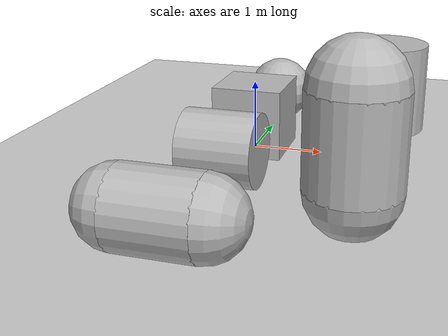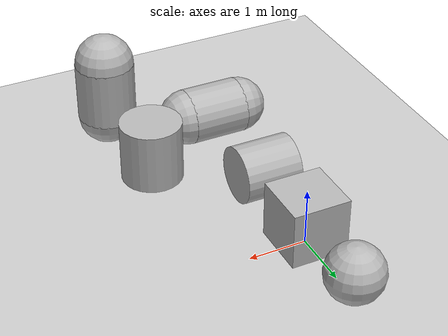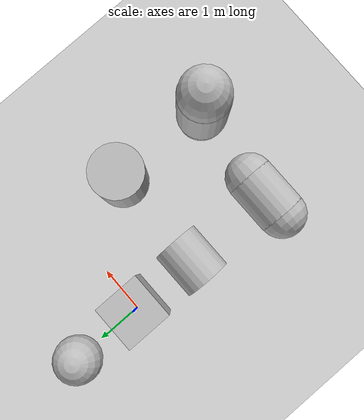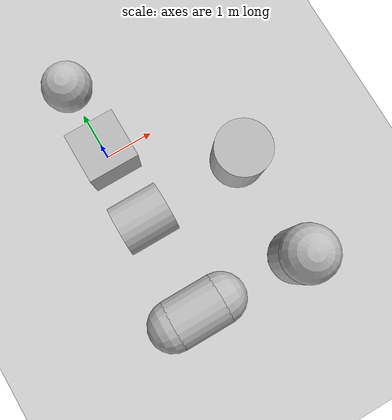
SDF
<?xml version="1.0" ?>
<sdf version="1.5">
  <world name="default">
    <include>
      <uri>model://ground_plane</uri>
    </include>
    <include>
      <uri>model://sun</uri>
    </include>

    <gravity>1 0 -9.81</gravity>

    <model name="box">
      <pose>0 0 0.5 0 0 0</pose>
      <link name="link">
        <collision name="collision">
          <geometry>
            <box>
              <size>1 1 1</size>
            </box>
          </geometry>
        </collision>
        <visual name="visual">
          <geometry>
            <box>
              <size>1 1 1</size>
            </box>
          </geometry>
          <material>
            <script>Gazebo/WoodPallet</script>
          </material>
        </visual>
      </link>
    </model>
    <model name="sphere">
      <pose>0 1.5 0.5 0 0 0</pose>
      <link name="link">
        <collision name="collision">
          <geometry>
            <sphere>
              <radius>0.5</radius>
            </sphere>
          </geometry>
        </collision>
        <visual name="visual">
          <geometry>
            <sphere>
              <radius>0.5</radius>
            </sphere>
          </geometry>
          <material>
            <script>Gazebo/WoodPallet</script>
          </material>
        </visual>
      </link>
    </model>
    <model name="cylinder">
      <pose>0 -1.5 0.5 0 1.5707 0</pose>
      <link name="link">
        <collision name="collision">
          <geometry>
            <cylinder>
              <radius>0.5</radius>
              <length>1.0</length>
            </cylinder>
          </geometry>
        </collision>
        <visual name="visual">
          <geometry>
            <cylinder>
              <radius>0.5</radius>
              <length>1.0</length>
            </cylinder>
          </geometry>
          <material>
            <script>Gazebo/WoodPallet</script>
          </material>
        </visual>
      </link>
    </model>
    <model name="capsule">
      <pose>0 -3.5 0.5 0 1.5707 0</pose>
      <link name="link">
        <collision name="collision">
          <geometry>
            <cylinder>
              <radius>-0.5</radius>
              <length>1.0</length>
            </cylinder>
          </geometry>
        </collision>
        <visual name="sphere_visual_1">
          <pose>0 0 0.5 0 0 0</pose>
          <geometry>
            <sphere>
              <radius>0.5</radius>
            </sphere>
          </geometry>
          <material>
            <script>Gazebo/WoodPallet</script>
          </material>
        </visual>
        <visual name="cylinder_visual">
          <geometry>
            <cylinder>
              <radius>0.5</radius>
              <length>1.0</length>
            </cylinder>
          </geometry>
          <material>
            <script>Gazebo/WoodPallet</script>
          </material>
        </visual>
        <visual name="sphere_visual_2">
          <pose>0 0 -0.5 0 0 0</pose>
          <geometry>
            <sphere>
              <radius>0.5</radius>
            </sphere>
          </geometry>
          <material>
            <script>Gazebo/WoodPallet</script>
          </material>
        </visual>
      </link>
    </model>
    <model name="cylinderZ">
      <pose>2 -1.5 1.5 0 0 0</pose>
      <link name="link">
        <collision name="collision">
          <geometry>
            <cylinder>
              <radius>0.5</radius>
              <length>1.0</length>
            </cylinder>
          </geometry>
        </collision>
        <visual name="visual">
          <geometry>
            <cylinder>
              <radius>0.5</radius>
              <length>1.0</length>
            </cylinder>
          </geometry>
          <material>
            <script>Gazebo/WoodPallet</script>
          </material>
        </visual>
      </link>
    </model>
    <model name="capsuleZ">
      <pose>2 -3.5 1.5 0 0 0</pose>
      <link name="link">
        <collision name="collision">
          <geometry>
            <cylinder>
              <radius>-0.5</radius>
              <length>1.0</length>
            </cylinder>
          </geometry>
        </collision>
        <visual name="sphere_visual_1">
          <pose>0 0 0.5 0 0 0</pose>
          <geometry>
            <sphere>
              <radius>0.5</radius>
            </sphere>
          </geometry>
          <material>
            <script>Gazebo/WoodPallet</script>
          </material>
        </visual>
        <visual name="cylinder_visual">
          <geometry>
            <cylinder>
              <radius>0.5</radius>
              <length>1.0</length>
            </cylinder>
          </geometry>
          <material>
            <script>Gazebo/WoodPallet</script>
          </material>
        </visual>
        <visual name="sphere_visual_2">
          <pose>0 0 -0.5 0 0 0</pose>
          <geometry>
            <sphere>
              <radius>0.5</radius>
            </sphere>
          </geometry>
          <material>
            <script>Gazebo/WoodPallet</script>
          </material>
        </visual>
      </link>
    </model>
  </world>
</sdf>
